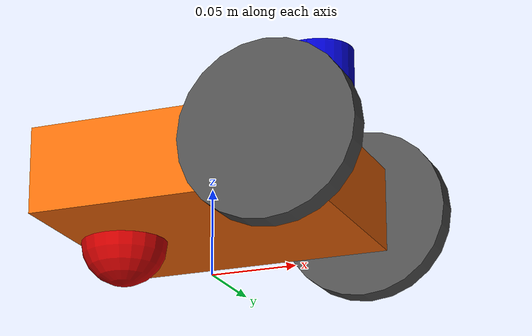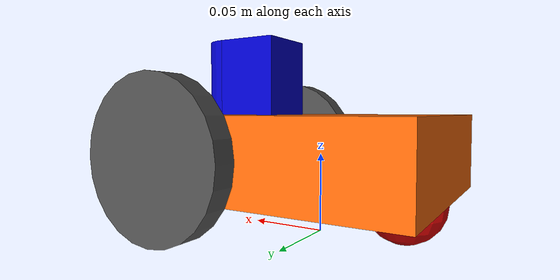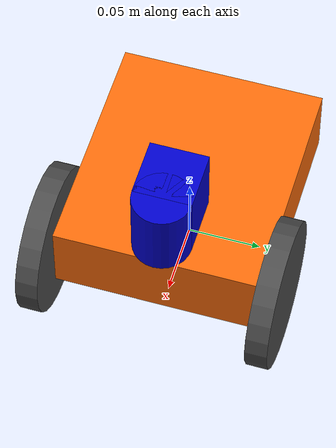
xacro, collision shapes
<?xml version="1.0"?>
<robot name="donatello" xmlns:xacro="http://ros.org/wiki/xacro">

<!-- SET ROBOT PARAMS-->
<xacro:property name="PI" value="3.1415926535897931"/>

<xacro:property name="chassisHeight" value="0.05"/>
<xacro:property name="chassisLength" value="0.16"/>
<xacro:property name="chassisWidth" value="0.14"/>
<xacro:property name="chassisMass" value="0.15"/>

<xacro:property name="casterRadius" value="0.025"/>
<xacro:property name="casterMass" value="0.005"/>

<xacro:property name="wheelWidth" value="0.015"/>
<xacro:property name="wheelRadius" value="0.05"/>
<xacro:property name="wheelPos" value="0.015"/>
<xacro:property name="wheelMass" value="0.02"/>

<xacro:property name="scanHeight" value="0.05"/>
<xacro:property name="scanPos" value="0.015"/>

<!-- INCLUDE FILES-->
<xacro:include filename="$(find roberta_sim)/robots/donatello/urdf/robot.gazebo" />
<xacro:include filename="$(find roberta_sim)/robots/donatello/urdf/materials.xacro" />
<xacro:include filename="$(find roberta_sim)/robots/donatello/urdf/macros.xacro" />

<link name="base_footprint" />

<joint name="base_joint" type="fixed">
  <parent link="base_footprint"/>
  <child link="chassis"/>
</joint>

<link name='chassis'>

  <collision>
    <origin xyz="0 0 ${wheelRadius}" rpy="0 0 0"/>
    <geometry>
      <box size="${chassisLength} ${chassisWidth} ${chassisHeight}"/>
    </geometry>
  </collision>

  <visual>
    <origin xyz="0 0 ${wheelRadius}" rpy="0 0 0"/>
    <geometry>
      <box size="${chassisLength} ${chassisWidth} ${chassisHeight}"/>
    </geometry>
    <material name="orange"/>
  </visual>

  <inertial>
    <origin xyz="0 0 ${wheelRadius}" rpy="0 0 0"/>
    <mass value="${chassisMass}"/>
    <box_inertia m="${chassisMass}" x="${chassisLength}" y="${chassisWidth}" z="${chassisHeight}"/>
  </inertial>

</link>

<joint name="caster_joint" type="fixed">
  <parent link="chassis"/>
  <child link="caster_wheel"/>
</joint>

<link name="caster_wheel">
  <collision>
    <origin xyz="${casterRadius-chassisLength/2} 0 ${casterRadius-chassisHeight+wheelRadius}" rpy="0 0 0"/>
    <geometry>
      <sphere radius="${casterRadius}"/>
    </geometry>
  </collision>

  <visual>
    <origin xyz="${casterRadius-chassisLength/2} 0 ${casterRadius-chassisHeight+wheelRadius}" rpy="0 0 0"/>
    <geometry>
      <sphere radius="${casterRadius}"/>
    </geometry>
    <material name="red"/>
  </visual>

  <inertial>
    <origin xyz="${casterRadius-chassisLength/2} 0 ${casterRadius-chassisHeight+wheelRadius}" rpy="0 0 0"/>
    <mass value="${casterMass}"/>
    <box_inertia m="${casterMass}" x="${casterRadius*2}" y="${casterRadius*2}" z="${casterRadius*2}"/>
    <sphere_inertia m="${casterMass}" r="${casterRadius}"/>
  </inertial>

</link>

<wheel lr="left" tY="1"/>
<wheel lr="right" tY="-1"/>

<joint name="scan_joint" type="fixed">
  <parent link="chassis"/>
  <child link="scan"/>
  <origin xyz="${chassisLength/2-scanPos} 0 ${chassisHeight/2+wheelRadius+scanHeight/2}" rpy="0 0 0"/>
</joint>

<link name="scan">
  <visual>
    <origin xyz="0 0 0" rpy="0 0 0"/>
    <geometry>
      <cylinder length="${scanHeight}" radius="0.02"/>
    </geometry>
    <material name="blue"/>
  </visual>
  <visual>
    <origin xyz="-0.02 0 0" rpy="0 0 0"/>
    <geometry>
      <box size="0.04 0.04 ${scanHeight}"/>
    </geometry>
    <material name="blue"/>
  </visual>

  <collision>
    <origin xyz="0 0 0" rpy="0 0 0"/>
    <geometry>
      <cylinder length="${scanHeight}" radius="0.02"/>
    </geometry>
  </collision>
  <collision>
    <origin xyz="-0.02 0 0.0" rpy="0 0 0"/>
    <geometry>
      <box size="0.04 0.04 ${scanHeight}"/>
    </geometry>
  </collision>

  <inertial>
    <mass value="0.114" />
    <origin xyz="0 0 0" />
    <inertia ixx="0.001" ixy="0.0" ixz="0.0"
              iyy="0.001" iyz="0.0"
              izz="0.001" />
  </inertial>

</link>

<joint name="imu_joint" type="fixed">
    <parent link="chassis"/>
    <child link="imu_link"/>
    <origin xyz="0 0 0" rpy="0 0 0"/>
</joint>

<link name="imu_link"/>

</robot>

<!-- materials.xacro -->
<robot name="xacro_properties" xmlns:xacro="http://ros.org/wiki/xacro">

  <material name="black">
      <color rgba="0.0 0.0 0.0 1.0"/>
  </material>

  <material name="dark">
    <color rgba="0.3 0.3 0.3 1.0"/>
  </material>
  <material name="light_black">
    <color rgba="0.4 0.4 0.4 1.0"/>
  </material>

  <material name="blue">
    <color rgba="0.0 0.0 0.8 1.0"/>
  </material>

  <material name="green">
    <color rgba="0.0 0.8 0.0 1.0"/>
  </material>

  <material name="grey">
    <color rgba="0.5 0.5 0.5 1.0"/>
  </material>

  <material name="orange">
    <color rgba="${255/255} ${108/255} ${10/255} 1.0"/>
  </material>

  <material name="brown">
    <color rgba="${222/255} ${207/255} ${195/255} 1.0"/>
  </material>

  <material name="red">
    <color rgba="0.8 0.0 0.0 1.0"/>
  </material>

  <material name="white">
    <color rgba="1.0 1.0 1.0 1.0"/>
  </material>

</robot>

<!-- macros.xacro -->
<robot name="xacro_properties" xmlns:xacro="http://ros.org/wiki/xacro">

<macro name="cylinder_inertia" params="m r h">
    <inertia  ixx="${m*(3*r*r+h*h)/12}" ixy = "0" ixz = "0"
        iyy="${m*(3*r*r+h*h)/12}" iyz = "0"
        izz="${m*r*r/2}"
    />
</macro>

<macro name="box_inertia" params="m x y z">
    <inertia  ixx="${m*(y*y+z*z)/12}" ixy = "0" ixz = "0"
        iyy="${m*(x*x+z*z)/12}" iyz = "0"
        izz="${m*(x*x+z*z)/12}"
    />
</macro>

<macro name="sphere_inertia" params="m r">
    <inertia  ixx="${2*m*r*r/5}" ixy = "0" ixz = "0"
        iyy="${2*m*r*r/5}" iyz = "0"
        izz="${2*m*r*r/5}"
    />
</macro>

<macro name="wheel" params="lr tY">

<link name="${lr}_wheel">
  <collision>
    <origin xyz="0 0 0" rpy="0 ${PI/2} ${PI/2}" />
    <geometry>
      <cylinder length="${wheelWidth}" radius="${wheelRadius}"/>
    </geometry>
  </collision>

  <visual>
    <origin xyz="0 0 0" rpy="0 0 0" />
    <geometry>
      <mesh filename="package://roberta_sim/robots/donatello/meshes/${lr}_tire.stl" scale="${wheelRadius*0.001/0.033} ${0.001*wheelWidth/0.018} ${0.001*wheelRadius/0.033}"/>
    </geometry>
    <material name="dark"/>
  </visual>

  <inertial>
    <origin xyz="0 0 0" rpy="0 ${PI/2} ${PI/2}" />
    <mass value="${wheelMass}"/>
    <cylinder_inertia m="${wheelMass}" r="${wheelRadius}" h="${wheelWidth}"/>
  </inertial>
</link>

<gazebo reference="${lr}_wheel">
    <mu1>0.1</mu1>
    <mu2>0.1</mu2>
    <kp>500000.0</kp>
    <kd>10.0</kd>
    <minDepth>0.001</minDepth>
    <maxVel>0.1</maxVel>
    <fdir1>1 0 0</fdir1>
  <material>Gazebo/FlatBlack</material>
</gazebo>

<joint name="${lr}_wheel_joint" type="continuous">
  <parent link="chassis"/>
  <child link="${lr}_wheel"/>
  <origin xyz="${chassisLength/2-wheelPos} ${tY*wheelWidth/2+tY*chassisWidth/2} ${wheelRadius}" rpy="0 0 0" />
  <axis xyz="0 1 0" rpy="0 0 0" />
</joint>

</macro>

</robot>
